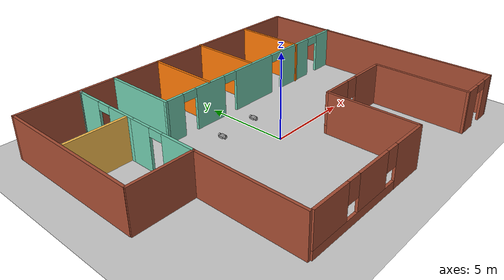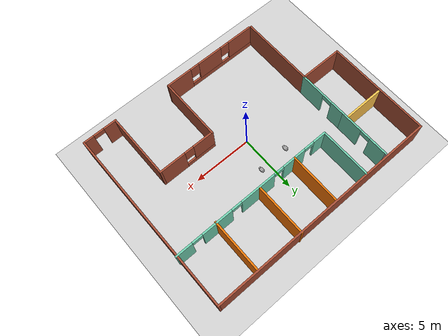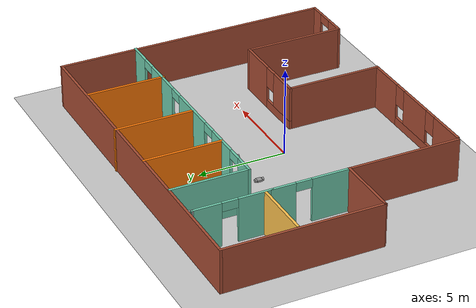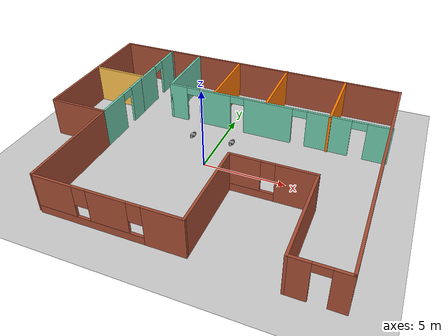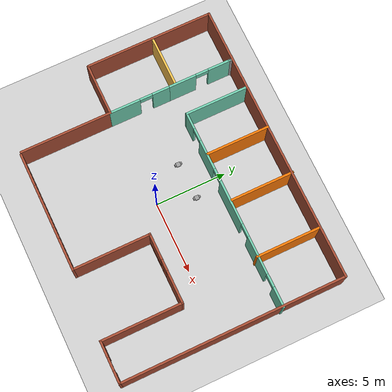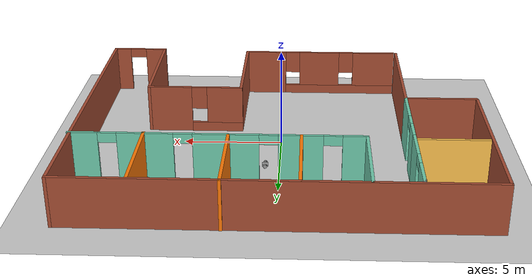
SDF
<sdf version="1.6">
 <world name="default">
  <plugin name="hello" filename="libhello.so"/>
  <light name="sun" type="directional">
   <pose>0 0 10 0 -0 0</pose>
   <diffuse>0.8 0.8 0.8 1</diffuse>
   <specular>0.2 0.2 0.2 1</specular>
   <attenuation>
    <range>1000</range>
    <constant>0.9</constant>
    <linear>0.01</linear>
    <quadratic>0.001</quadratic>
   </attenuation>
   <direction>-0.5 0.1 -0.9</direction>
  </light>
  <model name="ground_plane">
   <static>1</static>
   <link name="link">
    <collision name="collision">
     <geometry><plane><normal>0 0 1</normal><size>100 100</size></plane></geometry>
     <surface>
      <contact><collide_bitmask>65535</collide_bitmask></contact>
      <friction><ode><mu>100</mu><mu2>50</mu2></ode></friction>
     </surface>
    </collision>
    <visual name="visual">
     <cast_shadows>0</cast_shadows>
     <geometry><plane><normal>0 0 1</normal><size>100 100</size></plane></geometry>
     <material>
      <script><uri>file://media/materials/scripts/gazebo.material</uri><name>Gazebo/Grey</name></script>
     </material>
    </visual>
   </link>
  </model>
  <gravity>0 0 -9.8</gravity>
  <magnetic_field>6e-06 2.3e-05 -4.2e-05</magnetic_field>
  <atmosphere type="adiabatic"/>
  <physics name="default_physics" default="0" type="ode">
   <max_step_size>0.001</max_step_size>
   <real_time_factor>1</real_time_factor>
   <real_time_update_rate>1000</real_time_update_rate>
  </physics>
  <scene><ambient>0.4 0.4 0.4 1</ambient><background>0.7 0.7 0.7 1</background><shadows>1</shadows></scene>
  <spherical_coordinates>
   <surface_model>EARTH_WGS84</surface_model>
   <latitude_deg>0</latitude_deg>
   <longitude_deg>0</longitude_deg>
   <elevation>0</elevation>
   <heading_deg>0</heading_deg>
  </spherical_coordinates>
  <model name="Builiding">
   <pose>-0.021811 0.79376 0 0 -0 0</pose>
   <link name="Wall_0">
    <collision name="Wall_0_Collision">
     <geometry><box><size>20 0.15 2.5</size></box></geometry>
     <pose>0 0 1.25 0 -0 0</pose>
    </collision>
    <visual name="Wall_0_Visual">
     <pose>0 0 1.25 0 -0 0</pose>
     <geometry><box><size>20 0.15 2.5</size></box></geometry>
     <material>
      <script><uri>file://media/materials/scripts/gazebo.material</uri><name>Gazebo/Bricks</name></script>
      <ambient>1 1 1 1</ambient>
     </material>
     <meta><layer>0</layer></meta>
    </visual>
    <pose>-0.035674 7.77353 0 0 -0 3.14159</pose>
   </link>
   <link name="Wall_12">
    <pose>2.91067 3.37094 0 0 -0 0</pose>
    <visual name="Wall_12_Visual_0">
     <pose>-6.51132 0 1.25 0 -0 0</pose>
     <geometry><box><size>1.22736 0.15 2.5</size></box></geometry>
     <material>
      <script><uri>file://media/materials/scripts/gazebo.material</uri><name>Gazebo/Grey</name></script>
      <ambient>0.435294 0.796078 0.67451 1</ambient>
     </material>
     <meta><layer>0</layer></meta>
    </visual>
    <collision name="Wall_12_Collision_0">
     <geometry><box><size>1.22736 0.15 2.5</size></box></geometry>
     <pose>-6.51132 0 1.25 0 -0 0</pose>
    </collision>
    <visual name="Wall_12_Visual_1">
     <pose>-3.93495 0 1.25 0 -0 0</pose>
     <geometry><box><size>2.12537 0.15 2.5</size></box></geometry>
     <material>
      <script><uri>file://media/materials/scripts/gazebo.material</uri><name>Gazebo/Grey</name></script>
      <ambient>0.435294 0.796078 0.67451 1</ambient>
     </material>
     <meta><layer>0</layer></meta>
    </visual>
    <collision name="Wall_12_Collision_1">
     <geometry><box><size>2.12537 0.15 2.5</size></box></geometry>
     <pose>-3.93495 0 1.25 0 -0 0</pose>
    </collision>
    <visual name="Wall_12_Visual_2">
     <pose>-0.399486 0 1.25 0 -0 0</pose>
     <geometry><box><size>3.14556 0.15 2.5</size></box></geometry>
     <material>
      <script><uri>file://media/materials/scripts/gazebo.material</uri><name>Gazebo/Grey</name></script>
      <ambient>0.435294 0.796078 0.67451 1</ambient>
     </material>
     <meta><layer>0</layer></meta>
    </visual>
    <collision name="Wall_12_Collision_2">
     <geometry><box><size>3.14556 0.15 2.5</size></box></geometry>
     <pose>-0.399486 0 1.25 0 -0 0</pose>
    </collision>
    <visual name="Wall_12_Visual_3">
     <pose>3.41741 0 1.25 0 -0 0</pose>
     <geometry><box><size>2.68823 0.15 2.5</size></box></geometry>
     <material>
      <script><uri>file://media/materials/scripts/gazebo.material</uri><name>Gazebo/Grey</name></script>
      <ambient>0.435294 0.796078 0.67451 1</ambient>
     </material>
     <meta><layer>0</layer></meta>
    </visual>
    <collision name="Wall_12_Collision_3">
     <geometry><box><size>2.68823 0.15 2.5</size></box></geometry>
     <pose>3.41741 0 1.25 0 -0 0</pose>
    </collision>
    <visual name="Wall_12_Visual_4">
     <pose>6.39326 0 1.25 0 -0 0</pose>
     <geometry><box><size>1.46347 0.15 2.5</size></box></geometry>
     <material>
      <script><uri>file://media/materials/scripts/gazebo.material</uri><name>Gazebo/Grey</name></script>
      <ambient>0.435294 0.796078 0.67451 1</ambient>
     </material>
     <meta><layer>0</layer></meta>
    </visual>
    <collision name="Wall_12_Collision_4">
     <geometry><box><size>1.46347 0.15 2.5</size></box></geometry>
     <pose>6.39326 0 1.25 0 -0 0</pose>
    </collision>
    <visual name="Wall_12_Visual_5">
     <pose>-5.44764 0 2.25 0 -0 0</pose>
     <geometry><box><size>0.9 0.15 0.5</size></box></geometry>
     <material>
      <script><uri>file://media/materials/scripts/gazebo.material</uri><name>Gazebo/Grey</name></script>
      <ambient>0.435294 0.796078 0.67451 1</ambient>
     </material>
     <meta><layer>0</layer></meta>
    </visual>
    <collision name="Wall_12_Collision_5">
     <geometry><box><size>0.9 0.15 0.5</size></box></geometry>
     <pose>-5.44764 0 2.25 0 -0 0</pose>
    </collision>
    <visual name="Wall_12_Visual_6">
     <pose>-2.42226 0 2.25 0 -0 0</pose>
     <geometry><box><size>0.9 0.15 0.5</size></box></geometry>
     <material>
      <script><uri>file://media/materials/scripts/gazebo.material</uri><name>Gazebo/Grey</name></script>
      <ambient>0.435294 0.796078 0.67451 1</ambient>
     </material>
     <meta><layer>0</layer></meta>
    </visual>
    <collision name="Wall_12_Collision_6">
     <geometry><box><size>0.9 0.15 0.5</size></box></geometry>
     <pose>-2.42226 0 2.25 0 -0 0</pose>
    </collision>
    <visual name="Wall_12_Visual_7">
     <pose>1.62329 0 2.25 0 -0 0</pose>
     <geometry><box><size>0.9 0.15 0.5</size></box></geometry>
     <material>
      <script><uri>file://media/materials/scripts/gazebo.material</uri><name>Gazebo/Grey</name></script>
      <ambient>0.435294 0.796078 0.67451 1</ambient>
     </material>
     <meta><layer>0</layer></meta>
    </visual>
    <collision name="Wall_12_Collision_7">
     <geometry><box><size>0.9 0.15 0.5</size></box></geometry>
     <pose>1.62329 0 2.25 0 -0 0</pose>
    </collision>
    <visual name="Wall_12_Visual_8">
     <pose>5.21153 0 2.25 0 -0 0</pose>
     <geometry><box><size>0.9 0.15 0.5</size></box></geometry>
     <material>
      <script><uri>file://media/materials/scripts/gazebo.material</uri><name>Gazebo/Grey</name></script>
      <ambient>0.435294 0.796078 0.67451 1</ambient>
     </material>
     <meta><layer>0</layer></meta>
    </visual>
    <collision name="Wall_12_Collision_8">
     <geometry><box><size>0.9 0.15 0.5</size></box></geometry>
     <pose>5.21153 0 2.25 0 -0 0</pose>
    </collision>
   </link>
   <link name="Wall_17">
    <collision name="Wall_17_Collision">
     <geometry><box><size>6.5 0.15 2.5</size></box></geometry>
     <pose>0 0 1.25 0 -0 0</pose>
    </collision>
    <visual name="Wall_17_Visual">
     <pose>0 0 1.25 0 -0 0</pose>
     <geometry><box><size>6.5 0.15 2.5</size></box></geometry>
     <material>
      <script><uri>file://media/materials/scripts/gazebo.material</uri><name>Gazebo/Bricks</name></script>
      <ambient>1 1 1 1</ambient>
     </material>
     <meta><layer>0</layer></meta>
    </visual>
    <pose>-6.33627 -4.3243 0 0 -0 1.5708</pose>
   </link>
   <link name="Wall_18">
    <collision name="Wall_18_Collision">
     <geometry><box><size>3.75 0.15 2.5</size></box></geometry>
     <pose>0 0 1.25 0 -0 0</pose>
    </collision>
    <visual name="Wall_18_Visual">
     <pose>0 0 1.25 0 -0 0</pose>
     <geometry><box><size>3.75 0.15 2.5</size></box></geometry>
     <material>
      <script><uri>file://media/materials/scripts/gazebo.material</uri><name>Gazebo/Bricks</name></script>
      <ambient>1 1 1 1</ambient>
     </material>
     <meta><layer>0</layer></meta>
    </visual>
    <pose>-8.13627 -1.1493 0 0 -0 3.14159</pose>
   </link>
   <link name="Wall_2">
    <collision name="Wall_2_Collision">
     <geometry><box><size>9 0.15 2.5</size></box></geometry>
     <pose>0 0 1.25 0 -0 0</pose>
    </collision>
    <visual name="Wall_2_Visual">
     <pose>0 0 1.25 0 -0 0</pose>
     <geometry><box><size>9 0.15 2.5</size></box></geometry>
     <material>
      <script><uri>file://media/materials/scripts/gazebo.material</uri><name>Gazebo/Bricks</name></script>
      <ambient>1 1 1 1</ambient>
     </material>
     <meta><layer>0</layer></meta>
    </visual>
    <pose>-9.96067 3.34853 0 0 0 -1.5708</pose>
   </link>
   <link name="Wall_20">
    <pose>-6.33627 1.0257 0 0 -0 1.5708</pose>
    <visual name="Wall_20_Visual_0">
     <pose>-1.1448 0 1.25 0 -0 0</pose>
     <geometry><box><size>2.21041 0.15 2.5</size></box></geometry>
     <material>
      <script><uri>file://media/materials/scripts/gazebo.material</uri><name>Gazebo/Grey</name></script>
      <ambient>0.435294 0.796078 0.67451 1</ambient>
     </material>
     <meta><layer>0</layer></meta>
    </visual>
    <collision name="Wall_20_Collision_0">
     <geometry><box><size>2.21041 0.15 2.5</size></box></geometry>
     <pose>-1.1448 0 1.25 0 -0 0</pose>
    </collision>
    <visual name="Wall_20_Visual_1">
     <pose>1.5552 0 1.25 0 -0 0</pose>
     <geometry><box><size>1.38959 0.15 2.5</size></box></geometry>
     <material>
      <script><uri>file://media/materials/scripts/gazebo.material</uri><name>Gazebo/Grey</name></script>
      <ambient>0.435294 0.796078 0.67451 1</ambient>
     </material>
     <meta><layer>0</layer></meta>
    </visual>
    <collision name="Wall_20_Collision_1">
     <geometry><box><size>1.38959 0.15 2.5</size></box></geometry>
     <pose>1.5552 0 1.25 0 -0 0</pose>
    </collision>
    <visual name="Wall_20_Visual_2">
     <pose>0.410406 0 2.25 0 -0 0</pose>
     <geometry><box><size>0.9 0.15 0.5</size></box></geometry>
     <material>
      <script><uri>file://media/materials/scripts/gazebo.material</uri><name>Gazebo/Grey</name></script>
      <ambient>0.435294 0.796078 0.67451 1</ambient>
     </material>
     <meta><layer>0</layer></meta>
    </visual>
    <collision name="Wall_20_Collision_2">
     <geometry><box><size>0.9 0.15 0.5</size></box></geometry>
     <pose>0.410406 0 2.25 0 -0 0</pose>
    </collision>
   </link>
   <link name="Wall_22">
    <pose>-6.33627 5.3757 0 0 -0 1.5708</pose>
    <visual name="Wall_22_Visual_0">
     <pose>-1.27943 0 1.25 0 -0 0</pose>
     <geometry><box><size>1.94114 0.15 2.5</size></box></geometry>
     <material>
      <script><uri>file://media/materials/scripts/gazebo.material</uri><name>Gazebo/Grey</name></script>
      <ambient>0.435294 0.796078 0.67451 1</ambient>
     </material>
     <meta><layer>0</layer></meta>
    </visual>
    <collision name="Wall_22_Collision_0">
     <geometry><box><size>1.94114 0.15 2.5</size></box></geometry>
     <pose>-1.27943 0 1.25 0 -0 0</pose>
    </collision>
    <visual name="Wall_22_Visual_1">
     <pose>1.42057 0 1.25 0 -0 0</pose>
     <geometry><box><size>1.65886 0.15 2.5</size></box></geometry>
     <material>
      <script><uri>file://media/materials/scripts/gazebo.material</uri><name>Gazebo/Grey</name></script>
      <ambient>0.435294 0.796078 0.67451 1</ambient>
     </material>
     <meta><layer>0</layer></meta>
    </visual>
    <collision name="Wall_22_Collision_1">
     <geometry><box><size>1.65886 0.15 2.5</size></box></geometry>
     <pose>1.42057 0 1.25 0 -0 0</pose>
    </collision>
    <visual name="Wall_22_Visual_2">
     <pose>0.141142 0 2.25 0 -0 0</pose>
     <geometry><box><size>0.9 0.15 0.5</size></box></geometry>
     <material>
      <script><uri>file://media/materials/scripts/gazebo.material</uri><name>Gazebo/Grey</name></script>
      <ambient>0.435294 0.796078 0.67451 1</ambient>
     </material>
     <meta><layer>0</layer></meta>
    </visual>
    <collision name="Wall_22_Collision_2">
     <geometry><box><size>0.9 0.15 0.5</size></box></geometry>
     <pose>0.141142 0 2.25 0 -0 0</pose>
    </collision>
   </link>
   <link name="Wall_23">
    <collision name="Wall_23_Collision">
     <geometry><box><size>0.25 0.15 2.5</size></box></geometry>
     <pose>0 0 1.25 0 -0 0</pose>
    </collision>
    <visual name="Wall_23_Visual">
     <pose>0 0 1.25 0 -0 0</pose>
     <geometry><box><size>0.25 0.15 2.5</size></box></geometry>
     <material>
      <script><uri>file://media/materials/scripts/gazebo.material</uri><name>Gazebo/Grey</name></script>
      <ambient>1 1 1 1</ambient>
     </material>
     <meta><layer>0</layer></meta>
    </visual>
    <pose>-6.32333 7.599 0 0 -0 1.309</pose>
   </link>
   <link name="Wall_25">
    <collision name="Wall_25_Collision">
     <geometry><box><size>4.5 0.15 2.5</size></box></geometry>
     <pose>0 0 1.25 0 -0 0</pose>
    </collision>
    <visual name="Wall_25_Visual">
     <pose>0 0 1.25 0 -0 0</pose>
     <geometry><box><size>4.5 0.15 2.5</size></box></geometry>
     <material>
      <script><uri>file://media/materials/scripts/gazebo.material</uri><name>Gazebo/Grey</name></script>
      <ambient>0.435294 0.796078 0.67451 1</ambient>
     </material>
     <meta><layer>0</layer></meta>
    </visual>
    <pose>-4.13933 5.54594 0 0 -0 1.5708</pose>
   </link>
   <link name="Wall_27">
    <collision name="Wall_27_Collision">
     <geometry><box><size>3.5 0.15 2.5</size></box></geometry>
     <pose>0 0 1.25 0 -0 0</pose>
    </collision>
    <visual name="Wall_27_Visual">
     <pose>0 0 1.25 0 -0 0</pose>
     <geometry><box><size>3.5 0.15 2.5</size></box></geometry>
     <material>
      <script><uri>file://media/materials/scripts/gazebo.material</uri><name>Gazebo/Grey</name></script>
      <ambient>1 0.764706 0.305882 1</ambient>
     </material>
     <meta><layer>0</layer></meta>
    </visual>
    <pose>-8.11681 3.58201 0 0 -0 3.14159</pose>
   </link>
   <link name="Wall_29">
    <collision name="Wall_29_Collision">
     <geometry><box><size>4.5 0.15 2.5</size></box></geometry>
     <pose>0 0 1.25 0 -0 0</pose>
    </collision>
    <visual name="Wall_29_Visual">
     <pose>0 0 1.25 0 -0 0</pose>
     <geometry><box><size>4.5 0.15 2.5</size></box></geometry>
     <material>
      <script><uri>file://media/materials/scripts/gazebo.material</uri><name>Gazebo/Grey</name></script>
      <ambient>0.996078 0.47451 0.0196078 1</ambient>
     </material>
     <meta><layer>0</layer></meta>
    </visual>
    <pose>-1.05946 5.58112 0 0 -0 1.5708</pose>
   </link>
   <link name="Wall_31">
    <collision name="Wall_31_Collision">
     <geometry><box><size>4.5 0.15 2.5</size></box></geometry>
     <pose>0 0 1.25 0 -0 0</pose>
    </collision>
    <visual name="Wall_31_Visual">
     <pose>0 0 1.25 0 -0 0</pose>
     <geometry><box><size>4.5 0.15 2.5</size></box></geometry>
     <material>
      <script><uri>file://media/materials/scripts/gazebo.material</uri><name>Gazebo/Grey</name></script>
      <ambient>0.996078 0.47451 0.0196078 1</ambient>
     </material>
     <meta><layer>0</layer></meta>
    </visual>
    <pose>2.38806 5.65147 0 0 -0 1.5708</pose>
   </link>
   <link name="Wall_33">
    <collision name="Wall_33_Collision">
     <geometry><box><size>4.5 0.15 2.5</size></box></geometry>
     <pose>0 0 1.25 0 -0 0</pose>
    </collision>
    <visual name="Wall_33_Visual">
     <pose>0 0 1.25 0 -0 0</pose>
     <geometry><box><size>4.5 0.15 2.5</size></box></geometry>
     <material>
      <script><uri>file://media/materials/scripts/gazebo.material</uri><name>Gazebo/Grey</name></script>
      <ambient>0.996078 0.47451 0.0196078 1</ambient>
     </material>
     <meta><layer>0</layer></meta>
    </visual>
    <pose>6.39844 5.47558 0 0 -0 1.5708</pose>
   </link>
   <link name="Wall_4">
    <collision name="Wall_4_Collision">
     <geometry><box><size>15.75 0.15 2.5</size></box></geometry>
     <pose>0 0 1.25 0 -0 0</pose>
    </collision>
    <visual name="Wall_4_Visual">
     <pose>0 0 1.25 0 -0 0</pose>
     <geometry><box><size>15.75 0.15 2.5</size></box></geometry>
     <material>
      <script><uri>file://media/materials/scripts/gazebo.material</uri><name>Gazebo/Bricks</name></script>
      <ambient>1 1 1 1</ambient>
     </material>
     <meta><layer>0</layer></meta>
    </visual>
    <pose>9.88932 -0.026474 0 0 0 -1.5708</pose>
   </link>
   <link name="Wall_5">
    <pose>8.46433 -7.82647 0 0 -0 3.14159</pose>
    <visual name="Wall_5_Visual_0">
     <pose>-1.0326 0 1.25 0 -0 0</pose>
     <geometry><box><size>0.9348 0.15 2.5</size></box></geometry>
     <material>
      <script><uri>file://media/materials/scripts/gazebo.material</uri><name>Gazebo/Bricks</name></script>
      <ambient>1 1 1 1</ambient>
     </material>
     <meta><layer>0</layer></meta>
    </visual>
    <collision name="Wall_5_Collision_0">
     <geometry><box><size>0.9348 0.15 2.5</size></box></geometry>
     <pose>-1.0326 0 1.25 0 -0 0</pose>
    </collision>
    <visual name="Wall_5_Visual_1">
     <pose>0.9174 0 1.25 0 -0 0</pose>
     <geometry><box><size>1.1652 0.15 2.5</size></box></geometry>
     <material>
      <script><uri>file://media/materials/scripts/gazebo.material</uri><name>Gazebo/Bricks</name></script>
      <ambient>1 1 1 1</ambient>
     </material>
     <meta><layer>0</layer></meta>
    </visual>
    <collision name="Wall_5_Collision_1">
     <geometry><box><size>1.1652 0.15 2.5</size></box></geometry>
     <pose>0.9174 0 1.25 0 -0 0</pose>
    </collision>
    <visual name="Wall_5_Visual_2">
     <pose>-0.1152 0 2.25 0 -0 0</pose>
     <geometry><box><size>0.9 0.15 0.5</size></box></geometry>
     <material>
      <script><uri>file://media/materials/scripts/gazebo.material</uri><name>Gazebo/Bricks</name></script>
      <ambient>1 1 1 1</ambient>
     </material>
     <meta><layer>0</layer></meta>
    </visual>
    <collision name="Wall_5_Collision_2">
     <geometry><box><size>0.9 0.15 0.5</size></box></geometry>
     <pose>-0.1152 0 2.25 0 -0 0</pose>
    </collision>
   </link>
   <link name="Wall_6">
    <collision name="Wall_6_Collision">
     <geometry><box><size>5.75 0.15 2.5</size></box></geometry>
     <pose>0 0 1.25 0 -0 0</pose>
    </collision>
    <visual name="Wall_6_Visual">
     <pose>0 0 1.25 0 -0 0</pose>
     <geometry><box><size>5.75 0.15 2.5</size></box></geometry>
     <material>
      <script><uri>file://media/materials/scripts/gazebo.material</uri><name>Gazebo/Bricks</name></script>
      <ambient>1 1 1 1</ambient>
     </material>
     <meta><layer>0</layer></meta>
    </visual>
    <pose>7.03933 -5.02647 0 0 -0 1.5708</pose>
   </link>
   <link name="Wall_7">
    <pose>4.61433 -2.22647 0 0 -0 3.14159</pose>
    <visual name="Wall_7_Visual_0">
     <pose>-1.33946 0 1.25 0 -0 0</pose>
     <geometry><box><size>2.32107 0.15 2.5</size></box></geometry>
     <material>
      <script><uri>file://media/materials/scripts/gazebo.material</uri><name>Gazebo/Bricks</name></script>
      <ambient>1 1 1 1</ambient>
     </material>
     <meta><layer>0</layer></meta>
    </visual>
    <collision name="Wall_7_Collision_0">
     <geometry><box><size>2.32107 0.15 2.5</size></box></geometry>
     <pose>-1.33946 0 1.25 0 -0 0</pose>
    </collision>
    <visual name="Wall_7_Visual_1">
     <pose>1.16054 0 0.25 0 -0 0</pose>
     <geometry><box><size>2.67893 0.15 0.5</size></box></geometry>
     <material>
      <script><uri>file://media/materials/scripts/gazebo.material</uri><name>Gazebo/Bricks</name></script>
      <ambient>1 1 1 1</ambient>
     </material>
     <meta><layer>0</layer></meta>
    </visual>
    <collision name="Wall_7_Collision_1">
     <geometry><box><size>2.67893 0.15 0.5</size></box></geometry>
     <pose>1.16054 0 0.25 0 -0 0</pose>
    </collision>
    <visual name="Wall_7_Visual_2">
     <pose>1.56054 0 1.5 0 -0 0</pose>
     <geometry><box><size>1.87893 0.15 2</size></box></geometry>
     <material>
      <script><uri>file://media/materials/scripts/gazebo.material</uri><name>Gazebo/Bricks</name></script>
      <ambient>1 1 1 1</ambient>
     </material>
     <meta><layer>0</layer></meta>
    </visual>
    <collision name="Wall_7_Collision_2">
     <geometry><box><size>1.87893 0.15 2</size></box></geometry>
     <pose>1.56054 0 1.5 0 -0 0</pose>
    </collision>
    <visual name="Wall_7_Visual_3">
     <pose>0.221073 0 1.9 0 -0 0</pose>
     <geometry><box><size>0.8 0.15 1.2</size></box></geometry>
     <material>
      <script><uri>file://media/materials/scripts/gazebo.material</uri><name>Gazebo/Bricks</name></script>
      <ambient>1 1 1 1</ambient>
     </material>
     <meta><layer>0</layer></meta>
    </visual>
    <collision name="Wall_7_Collision_3">
     <geometry><box><size>0.8 0.15 1.2</size></box></geometry>
     <pose>0.221073 0 1.9 0 -0 0</pose>
    </collision>
   </link>
   <link name="Wall_8">
    <collision name="Wall_8_Collision">
     <geometry><box><size>5.5 0.15 2.5</size></box></geometry>
     <pose>0 0 1.25 0 -0 0</pose>
    </collision>
    <visual name="Wall_8_Visual">
     <pose>0 0 1.25 0 -0 0</pose>
     <geometry><box><size>5.5 0.15 2.5</size></box></geometry>
     <material>
      <script><uri>file://media/materials/scripts/gazebo.material</uri><name>Gazebo/Bricks</name></script>
      <ambient>1 1 1 1</ambient>
     </material>
     <meta><layer>0</layer></meta>
    </visual>
    <pose>2.18933 -4.90147 0 0 0 -1.5708</pose>
   </link>
   <link name="Wall_9">
    <pose>-1.98567 -7.57647 0 0 -0 3.14159</pose>
    <visual name="Wall_9_Visual_0">
     <pose>-3.10472 0 1.25 0 -0 0</pose>
     <geometry><box><size>2.29056 0.15 2.5</size></box></geometry>
     <material>
      <script><uri>file://media/materials/scripts/gazebo.material</uri><name>Gazebo/Bricks</name></script>
      <ambient>1 1 1 1</ambient>
     </material>
     <meta><layer>0</layer></meta>
    </visual>
    <collision name="Wall_9_Collision_0">
     <geometry><box><size>2.29056 0.15 2.5</size></box></geometry>
     <pose>-3.10472 0 1.25 0 -0 0</pose>
    </collision>
    <visual name="Wall_9_Visual_1">
     <pose>1.14528 0 0.25 0 -0 0</pose>
     <geometry><box><size>6.20944 0.15 0.5</size></box></geometry>
     <material>
      <script><uri>file://media/materials/scripts/gazebo.material</uri><name>Gazebo/Bricks</name></script>
      <ambient>1 1 1 1</ambient>
     </material>
     <meta><layer>0</layer></meta>
    </visual>
    <collision name="Wall_9_Collision_1">
     <geometry><box><size>6.20944 0.15 0.5</size></box></geometry>
     <pose>1.14528 0 0.25 0 -0 0</pose>
    </collision>
    <visual name="Wall_9_Visual_2">
     <pose>-0.02916 0 1.5 0 -0 0</pose>
     <geometry><box><size>2.26055 0.15 2</size></box></geometry>
     <material>
      <script><uri>file://media/materials/scripts/gazebo.material</uri><name>Gazebo/Bricks</name></script>
      <ambient>1 1 1 1</ambient>
     </material>
     <meta><layer>0</layer></meta>
    </visual>
    <collision name="Wall_9_Collision_2">
     <geometry><box><size>2.26055 0.15 2</size></box></geometry>
     <pose>-0.02916 0 1.5 0 -0 0</pose>
    </collision>
    <visual name="Wall_9_Visual_3">
     <pose>3.07556 0 1.5 0 -0 0</pose>
     <geometry><box><size>2.34888 0.15 2</size></box></geometry>
     <material>
      <script><uri>file://media/materials/scripts/gazebo.material</uri><name>Gazebo/Bricks</name></script>
      <ambient>1 1 1 1</ambient>
     </material>
     <meta><layer>0</layer></meta>
    </visual>
    <collision name="Wall_9_Collision_3">
     <geometry><box><size>2.34888 0.15 2</size></box></geometry>
     <pose>3.07556 0 1.5 0 -0 0</pose>
    </collision>
    <visual name="Wall_9_Visual_4">
     <pose>-1.55944 0 1.9 0 -0 0</pose>
     <geometry><box><size>0.8 0.15 1.2</size></box></geometry>
     <material>
      <script><uri>file://media/materials/scripts/gazebo.material</uri><name>Gazebo/Bricks</name></script>
      <ambient>1 1 1 1</ambient>
     </material>
     <meta><layer>0</layer></meta>
    </visual>
    <collision name="Wall_9_Collision_4">
     <geometry><box><size>0.8 0.15 1.2</size></box></geometry>
     <pose>-1.55944 0 1.9 0 -0 0</pose>
    </collision>
    <visual name="Wall_9_Visual_5">
     <pose>1.50112 0 1.9 0 -0 0</pose>
     <geometry><box><size>0.8 0.15 1.2</size></box></geometry>
     <material>
      <script><uri>file://media/materials/scripts/gazebo.material</uri><name>Gazebo/Bricks</name></script>
      <ambient>1 1 1 1</ambient>
     </material>
     <meta><layer>0</layer></meta>
    </visual>
    <collision name="Wall_9_Collision_5">
     <geometry><box><size>0.8 0.15 1.2</size></box></geometry>
     <pose>1.50112 0 1.9 0 -0 0</pose>
    </collision>
   </link>
   <static>1</static>
  </model>
  <model name="robot">
   <link name="link_1">
    <pose>0 -3e-06 0 0 -0 0</pose>
    <inertial>
     <mass>1</mass>
     <inertia>
      <ixx>0.166667</ixx>
      <ixy>0</ixy>
      <ixz>0</ixz>
      <iyy>0.166667</iyy>
      <iyz>0</iyz>
      <izz>0.166667</izz>
     </inertia>
    </inertial>
    <visual name="visual">
     <geometry><box><size>0.3 0.3 0.1</size></box></geometry>
     <material>
      <lighting>1</lighting>
      <script><uri>file://media/materials/scripts/gazebo.material</uri><name>Gazebo/Grey</name></script>
      <shader type="pixel"><normal_map>__default__</normal_map></shader>
      <ambient>0.3 0.3 0.3 1</ambient>
      <diffuse>0.7 0.7 0.7 1</diffuse>
      <specular>0.01 0.01 0.01 1</specular>
      <emissive>0 0 0 1</emissive>
     </material>
    </visual>
    <collision name="collision">
     <geometry><box><size>0.3 0.3 0.1</size></box></geometry>
     <surface>
      <friction>
       <ode><mu>1</mu><mu2>1</mu2><fdir1>0 0 0</fdir1><slip1>0</slip1><slip2>0</slip2></ode>
       <torsional>
        <coefficient>1</coefficient>
        <patch_radius>0</patch_radius>
        <surface_radius>0</surface_radius>
        <use_patch_radius>1</use_patch_radius>
        <ode><slip>0</slip></ode>
       </torsional>
      </friction>
      <bounce><restitution_coefficient>0</restitution_coefficient><threshold>1e+06</threshold></bounce>
      <contact>
       <collide_without_contact>0</collide_without_contact>
       <collide_without_contact_bitmask>1</collide_without_contact_bitmask>
       <collide_bitmask>1</collide_bitmask>
       <ode>
        <soft_cfm>0</soft_cfm>
        <soft_erp>0.2</soft_erp>
        <kp>1e+13</kp>
        <kd>1</kd>
        <max_vel>0.01</max_vel>
        <min_depth>0</min_depth>
       </ode>
       <bullet>
        <split_impulse>1</split_impulse>
        <split_impulse_penetration_threshold>-0.01</split_impulse_penetration_threshold>
        <soft_cfm>0</soft_cfm>
        <soft_erp>0.2</soft_erp>
        <kp>1e+13</kp>
        <kd>1</kd>
       </bullet>
      </contact>
     </surface>
    </collision>
   </link>
   <link name="link_2_clone">
    <pose>0 0.200016 0 1.5707 -0 0</pose>
    <inertial>
     <mass>1</mass>
     <inertia><ixx>0.145833</ixx><ixy>0</ixy><ixz>0</ixz><iyy>0.145833</iyy><iyz>0</iyz><izz>0.125</izz></inertia>
    </inertial>
    <visual name="visual">
     <geometry><cylinder><radius>0.1</radius><length>0.1</length></cylinder></geometry>
     <material>
      <lighting>1</lighting>
      <script><uri>file://media/materials/scripts/gazebo.material</uri><name>Gazebo/Grey</name></script>
      <shader type="pixel"><normal_map>__default__</normal_map></shader>
      <ambient>0.3 0.3 0.3 1</ambient>
      <diffuse>0.7 0.7 0.7 1</diffuse>
      <specular>0.01 0.01 0.01 1</specular>
      <emissive>0 0 0 1</emissive>
     </material>
    </visual>
    <collision name="collision">
     <geometry><cylinder><radius>0.1</radius><length>0.1</length></cylinder></geometry>
     <surface>
      <friction>
       <ode><mu>1</mu><mu2>1</mu2><fdir1>0 0 0</fdir1><slip1>0</slip1><slip2>0</slip2></ode>
       <torsional>
        <coefficient>1</coefficient>
        <patch_radius>0</patch_radius>
        <surface_radius>0</surface_radius>
        <use_patch_radius>1</use_patch_radius>
        <ode><slip>0</slip></ode>
       </torsional>
      </friction>
      <bounce><restitution_coefficient>0</restitution_coefficient><threshold>1e+06</threshold></bounce>
      <contact>
       <collide_without_contact>0</collide_without_contact>
       <collide_without_contact_bitmask>1</collide_without_contact_bitmask>
       <collide_bitmask>1</collide_bitmask>
       <ode>
        <soft_cfm>0</soft_cfm>
        <soft_erp>0.2</soft_erp>
        <kp>1e+13</kp>
        <kd>1</kd>
        <max_vel>0.01</max_vel>
        <min_depth>0</min_depth>
       </ode>
       <bullet>
        <split_impulse>1</split_impulse>
        <split_impulse_penetration_threshold>-0.01</split_impulse_penetration_threshold>
        <soft_cfm>0</soft_cfm>
        <soft_erp>0.2</soft_erp>
        <kp>1e+13</kp>
        <kd>1</kd>
       </bullet>
      </contact>
     </surface>
    </collision>
   </link>
   <link name="link_2_clone_clone">
    <pose>0 -0.200013 0 1.5707 -0 0</pose>
    <inertial>
     <mass>1</mass>
     <inertia><ixx>0.145833</ixx><ixy>0</ixy><ixz>0</ixz><iyy>0.145833</iyy><iyz>0</iyz><izz>0.125</izz></inertia>
    </inertial>
    <visual name="visual">
     <geometry><cylinder><radius>0.1</radius><length>0.1</length></cylinder></geometry>
     <material>
      <lighting>1</lighting>
      <script><uri>file://media/materials/scripts/gazebo.material</uri><name>Gazebo/Grey</name></script>
      <shader type="pixel"><normal_map>__default__</normal_map></shader>
      <ambient>0.3 0.3 0.3 1</ambient>
      <diffuse>0.7 0.7 0.7 1</diffuse>
      <specular>0.01 0.01 0.01 1</specular>
      <emissive>0 0 0 1</emissive>
     </material>
    </visual>
    <collision name="collision">
     <geometry><cylinder><radius>0.1</radius><length>0.1</length></cylinder></geometry>
     <surface>
      <friction>
       <ode><mu>1</mu><mu2>1</mu2><fdir1>0 0 0</fdir1><slip1>0</slip1><slip2>0</slip2></ode>
       <torsional>
        <coefficient>1</coefficient>
        <patch_radius>0</patch_radius>
        <surface_radius>0</surface_radius>
        <use_patch_radius>1</use_patch_radius>
        <ode><slip>0</slip></ode>
       </torsional>
      </friction>
      <bounce><restitution_coefficient>0</restitution_coefficient><threshold>1e+06</threshold></bounce>
      <contact>
       <collide_without_contact>0</collide_without_contact>
       <collide_without_contact_bitmask>1</collide_without_contact_bitmask>
       <collide_bitmask>1</collide_bitmask>
       <ode>
        <soft_cfm>0</soft_cfm>
        <soft_erp>0.2</soft_erp>
        <kp>1e+13</kp>
        <kd>1</kd>
        <max_vel>0.01</max_vel>
        <min_depth>0</min_depth>
       </ode>
       <bullet>
        <split_impulse>1</split_impulse>
        <split_impulse_penetration_threshold>-0.01</split_impulse_penetration_threshold>
        <soft_cfm>0</soft_cfm>
        <soft_erp>0.2</soft_erp>
        <kp>1e+13</kp>
        <kd>1</kd>
       </bullet>
      </contact>
     </surface>
    </collision>
   </link>
   <joint name="link_1_JOINT_1" type="revolute">
    <parent>link_1</parent>
    <child>link_2_clone</child>
    <axis>
     <xyz>0 0 1</xyz>
     <use_parent_model_frame>0</use_parent_model_frame>
     <limit>
      <lower>-1.79769e+308</lower>
      <upper>1.79769e+308</upper>
      <effort>-1</effort>
      <velocity>-1</velocity>
     </limit>
     <dynamics>
      <spring_reference>0</spring_reference>
      <spring_stiffness>0</spring_stiffness>
      <damping>0</damping>
     </dynamics>
    </axis>
    <physics>
     <ode><limit><cfm>0</cfm><erp>0.2</erp></limit><suspension><cfm>0</cfm><erp>0.2</erp></suspension></ode>
    </physics>
   </joint>
   <joint name="link_1_JOINT_2" type="revolute">
    <parent>link_1</parent>
    <child>link_2_clone_clone</child>
    <axis>
     <xyz>0 0 1</xyz>
     <use_parent_model_frame>0</use_parent_model_frame>
     <limit>
      <lower>-1.79769e+308</lower>
      <upper>1.79769e+308</upper>
      <effort>-1</effort>
      <velocity>-1</velocity>
     </limit>
     <dynamics>
      <spring_reference>0</spring_reference>
      <spring_stiffness>0</spring_stiffness>
      <damping>0</damping>
     </dynamics>
    </axis>
    <physics>
     <ode><limit><cfm>0</cfm><erp>0.2</erp></limit><suspension><cfm>0</cfm><erp>0.2</erp></suspension></ode>
    </physics>
   </joint>
   <static>0</static>
   <pose>-1.90229 2.46635 0.100005 0 -6.7e-05 -2.9e-05</pose>
  </model>
  <model name="robot_0">
   <link name="link_1">
    <pose>0 -3e-06 0 0 -0 0</pose>
    <inertial>
     <mass>1</mass>
     <inertia>
      <ixx>0.166667</ixx>
      <ixy>0</ixy>
      <ixz>0</ixz>
      <iyy>0.166667</iyy>
      <iyz>0</iyz>
      <izz>0.166667</izz>
     </inertia>
    </inertial>
    <visual name="visual">
     <geometry><box><size>0.3 0.3 0.1</size></box></geometry>
     <material>
      <lighting>1</lighting>
      <script><uri>file://media/materials/scripts/gazebo.material</uri><name>Gazebo/Grey</name></script>
      <shader type="pixel"><normal_map>__default__</normal_map></shader>
      <ambient>0.3 0.3 0.3 1</ambient>
      <diffuse>0.7 0.7 0.7 1</diffuse>
      <specular>0.01 0.01 0.01 1</specular>
      <emissive>0 0 0 1</emissive>
     </material>
    </visual>
    <collision name="collision">
     <geometry><box><size>0.3 0.3 0.1</size></box></geometry>
     <surface>
      <friction>
       <ode><mu>1</mu><mu2>1</mu2><fdir1>0 0 0</fdir1><slip1>0</slip1><slip2>0</slip2></ode>
       <torsional>
        <coefficient>1</coefficient>
        <patch_radius>0</patch_radius>
        <surface_radius>0</surface_radius>
        <use_patch_radius>1</use_patch_radius>
        <ode><slip>0</slip></ode>
       </torsional>
      </friction>
      <bounce><restitution_coefficient>0</restitution_coefficient><threshold>1e+06</threshold></bounce>
      <contact>
       <collide_without_contact>0</collide_without_contact>
       <collide_without_contact_bitmask>1</collide_without_contact_bitmask>
       <collide_bitmask>1</collide_bitmask>
       <ode>
        <soft_cfm>0</soft_cfm>
        <soft_erp>0.2</soft_erp>
        <kp>1e+13</kp>
        <kd>1</kd>
        <max_vel>0.01</max_vel>
        <min_depth>0</min_depth>
       </ode>
       <bullet>
        <split_impulse>1</split_impulse>
        <split_impulse_penetration_threshold>-0.01</split_impulse_penetration_threshold>
        <soft_cfm>0</soft_cfm>
        <soft_erp>0.2</soft_erp>
        <kp>1e+13</kp>
        <kd>1</kd>
       </bullet>
      </contact>
     </surface>
    </collision>
   </link>
   <link name="link_2_clone">
    <pose>0 0.200016 0 1.5707 -0 0</pose>
    <inertial>
     <mass>1</mass>
     <inertia><ixx>0.145833</ixx><ixy>0</ixy><ixz>0</ixz><iyy>0.145833</iyy><iyz>0</iyz><izz>0.125</izz></inertia>
    </inertial>
    <visual name="visual">
     <geometry><cylinder><radius>0.1</radius><length>0.1</length></cylinder></geometry>
     <material>
      <lighting>1</lighting>
      <script><uri>file://media/materials/scripts/gazebo.material</uri><name>Gazebo/Grey</name></script>
      <shader type="pixel"><normal_map>__default__</normal_map></shader>
      <ambient>0.3 0.3 0.3 1</ambient>
      <diffuse>0.7 0.7 0.7 1</diffuse>
      <specular>0.01 0.01 0.01 1</specular>
      <emissive>0 0 0 1</emissive>
     </material>
    </visual>
    <collision name="collision">
     <geometry><cylinder><radius>0.1</radius><length>0.1</length></cylinder></geometry>
     <surface>
      <friction>
       <ode><mu>1</mu><mu2>1</mu2><fdir1>0 0 0</fdir1><slip1>0</slip1><slip2>0</slip2></ode>
       <torsional>
        <coefficient>1</coefficient>
        <patch_radius>0</patch_radius>
        <surface_radius>0</surface_radius>
        <use_patch_radius>1</use_patch_radius>
        <ode><slip>0</slip></ode>
       </torsional>
      </friction>
      <bounce><restitution_coefficient>0</restitution_coefficient><threshold>1e+06</threshold></bounce>
      <contact>
       <collide_without_contact>0</collide_without_contact>
       <collide_without_contact_bitmask>1</collide_without_contact_bitmask>
       <collide_bitmask>1</collide_bitmask>
       <ode>
        <soft_cfm>0</soft_cfm>
        <soft_erp>0.2</soft_erp>
        <kp>1e+13</kp>
        <kd>1</kd>
        <max_vel>0.01</max_vel>
        <min_depth>0</min_depth>
       </ode>
       <bullet>
        <split_impulse>1</split_impulse>
        <split_impulse_penetration_threshold>-0.01</split_impulse_penetration_threshold>
        <soft_cfm>0</soft_cfm>
        <soft_erp>0.2</soft_erp>
        <kp>1e+13</kp>
        <kd>1</kd>
       </bullet>
      </contact>
     </surface>
    </collision>
   </link>
   <link name="link_2_clone_clone">
    <pose>0 -0.200013 0 1.5707 -0 0</pose>
    <inertial>
     <mass>1</mass>
     <inertia><ixx>0.145833</ixx><ixy>0</ixy><ixz>0</ixz><iyy>0.145833</iyy><iyz>0</iyz><izz>0.125</izz></inertia>
    </inertial>
    <visual name="visual">
     <geometry><cylinder><radius>0.1</radius><length>0.1</length></cylinder></geometry>
     <material>
      <lighting>1</lighting>
      <script><uri>file://media/materials/scripts/gazebo.material</uri><name>Gazebo/Grey</name></script>
      <shader type="pixel"><normal_map>__default__</normal_map></shader>
      <ambient>0.3 0.3 0.3 1</ambient>
      <diffuse>0.7 0.7 0.7 1</diffuse>
      <specular>0.01 0.01 0.01 1</specular>
      <emissive>0 0 0 1</emissive>
     </material>
    </visual>
    <collision name="collision">
     <geometry><cylinder><radius>0.1</radius><length>0.1</length></cylinder></geometry>
     <surface>
      <friction>
       <ode><mu>1</mu><mu2>1</mu2><fdir1>0 0 0</fdir1><slip1>0</slip1><slip2>0</slip2></ode>
       <torsional>
        <coefficient>1</coefficient>
        <patch_radius>0</patch_radius>
        <surface_radius>0</surface_radius>
        <use_patch_radius>1</use_patch_radius>
        <ode><slip>0</slip></ode>
       </torsional>
      </friction>
      <bounce><restitution_coefficient>0</restitution_coefficient><threshold>1e+06</threshold></bounce>
      <contact>
       <collide_without_contact>0</collide_without_contact>
       <collide_without_contact_bitmask>1</collide_without_contact_bitmask>
       <collide_bitmask>1</collide_bitmask>
       <ode>
        <soft_cfm>0</soft_cfm>
        <soft_erp>0.2</soft_erp>
        <kp>1e+13</kp>
        <kd>1</kd>
        <max_vel>0.01</max_vel>
        <min_depth>0</min_depth>
       </ode>
       <bullet>
        <split_impulse>1</split_impulse>
        <split_impulse_penetration_threshold>-0.01</split_impulse_penetration_threshold>
        <soft_cfm>0</soft_cfm>
        <soft_erp>0.2</soft_erp>
        <kp>1e+13</kp>
        <kd>1</kd>
       </bullet>
      </contact>
     </surface>
    </collision>
   </link>
   <joint name="link_1_JOINT_1" type="revolute">
    <parent>link_1</parent>
    <child>link_2_clone</child>
    <axis>
     <xyz>0 0 1</xyz>
     <use_parent_model_frame>0</use_parent_model_frame>
     <limit>
      <lower>-1.79769e+308</lower>
      <upper>1.79769e+308</upper>
      <effort>-1</effort>
      <velocity>-1</velocity>
     </limit>
     <dynamics>
      <spring_reference>0</spring_reference>
      <spring_stiffness>0</spring_stiffness>
      <damping>0</damping>
     </dynamics>
    </axis>
    <physics>
     <ode><limit><cfm>0</cfm><erp>0.2</erp></limit><suspension><cfm>0</cfm><erp>0.2</erp></suspension></ode>
    </physics>
   </joint>
   <joint name="link_1_JOINT_2" type="revolute">
    <parent>link_1</parent>
    <child>link_2_clone_clone</child>
    <axis>
     <xyz>0 0 1</xyz>
     <use_parent_model_frame>0</use_parent_model_frame>
     <limit>
      <lower>-1.79769e+308</lower>
      <upper>1.79769e+308</upper>
      <effort>-1</effort>
      <velocity>-1</velocity>
     </limit>
     <dynamics>
      <spring_reference>0</spring_reference>
      <spring_stiffness>0</spring_stiffness>
      <damping>0</damping>
     </dynamics>
    </axis>
    <physics>
     <ode><limit><cfm>0</cfm><erp>0.2</erp></limit><suspension><cfm>0</cfm><erp>0.2</erp></suspension></ode>
    </physics>
   </joint>
   <static>0</static>
   <pose>0.715694 2.60016 0.100005 -0 -4.2e-05 -1.9e-05</pose>
  </model>
 </world>
</sdf>
